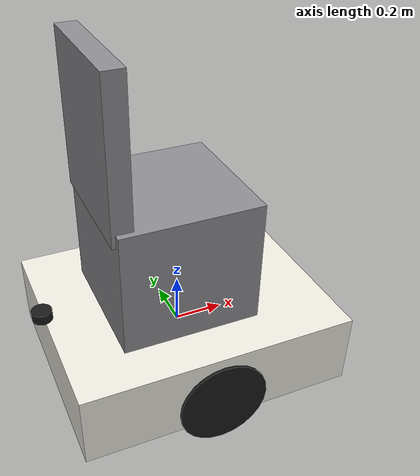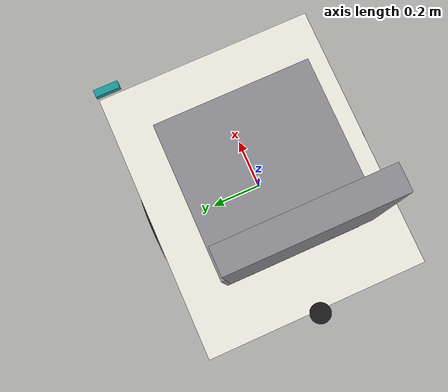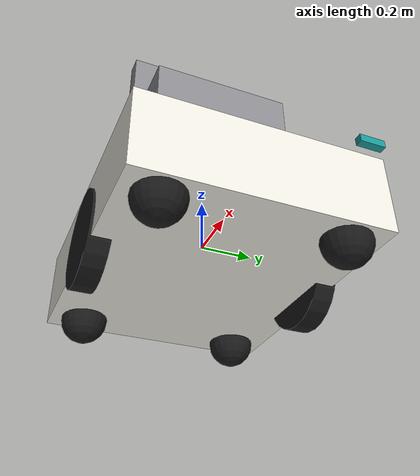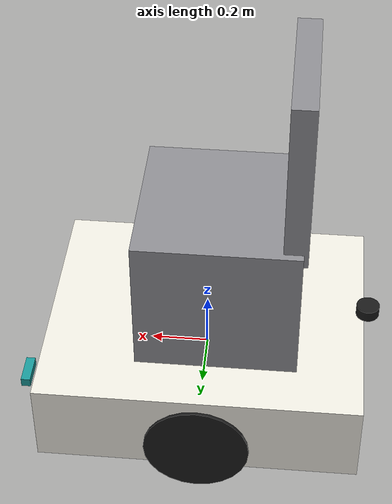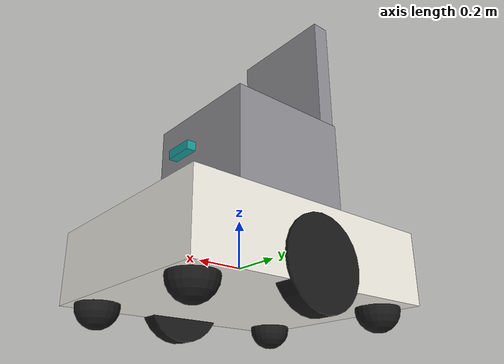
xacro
<?xml version="1.0"?>
<robot xmlns:xacro="http://www.ros.org/wiki/xacro" name="nanomob">
  <xacro:property name="L" value="1.10"/>
  <xacro:property name="W" value="0.90"/>
  <xacro:property name="H" value="0.30"/>
  <xacro:property name="wheel_r" value="0.18"/>
  <xacro:property name="wheel_w" value="0.08"/>
  <xacro:property name="wheel_y" value="0.42"/>
  <xacro:property name="wheel_z" value="-0.07"/>   <!-- base_link 원점은 지상 0.25 m -->
  <xacro:arg name="caster_r" default="0.09"/>
  <!-- 센서 장착 위치(E6 센서 배치 시험용 인자). z 는 base_link 기준(지상고 = z + 0.25), cam_pitch 는 아래로 + [rad] -->
  <xacro:arg name="cam_x" default="0.56"/><xacro:arg name="cam_y" default="0.40"/><xacro:arg name="cam_z" default="0.20"/><xacro:arg name="cam_pitch" default="0.0"/>
  <xacro:arg name="lidar_x" default="-0.56"/><xacro:arg name="lidar_y" default="0.0"/><xacro:arg name="lidar_z" default="0.20"/>   <!-- 캐스터 반지름: 턱 넘기 비교(E5c)용 인자 -->
  <xacro:property name="caster_r" value="$(arg caster_r)"/>
  <xacro:property name="caster_z" value="${caster_r - 0.25}"/>   <!-- 지면 접촉 유지: base_link 원점이 지상 0.25 m -->

  <xacro:macro name="box_inertia" params="m x y z">
    <inertia ixx="${m*(y*y+z*z)/12}" iyy="${m*(x*x+z*z)/12}" izz="${m*(x*x+y*y)/12}" ixy="0" ixz="0" iyz="0"/>
  </xacro:macro>

  <link name="base_link">
    <inertial><mass value="60"/><origin xyz="0 0 0"/><xacro:box_inertia m="60" x="${L}" y="${W}" z="${H}"/></inertial>
    <visual><geometry><box size="${L} ${W} ${H}"/></geometry><material name="ivory"><color rgba="0.93 0.92 0.88 1"/></material></visual>
    <collision><geometry><box size="${L} ${W} ${H}"/></geometry></collision>
  </link>

  <!-- 좌석 + 탑승자 (집중질량) -->
  <link name="seat_link">
    <inertial><mass value="70"/><origin xyz="0 0 0.3"/><xacro:box_inertia m="70" x="0.5" y="0.5" z="0.9"/></inertial>
    <visual><origin xyz="0 0 0.25"/><geometry><box size="0.55 0.55 0.5"/></geometry><material name="gray"><color rgba="0.55 0.55 0.57 1"/></material></visual>
    <visual><origin xyz="-0.25 0 0.75"/><geometry><box size="0.08 0.5 0.6"/></geometry><material name="gray"/></visual>
    <collision><origin xyz="0 0 0.25"/><geometry><box size="0.55 0.55 0.5"/></geometry></collision>
  </link>
  <joint name="seat_joint" type="fixed"><parent link="base_link"/><child link="seat_link"/><origin xyz="-0.05 0 ${H/2}"/></joint>

  <!-- 구동륜 -->
  <xacro:macro name="drive_wheel" params="name y">
    <link name="${name}_wheel">
      <inertial><mass value="3"/><inertia ixx="0.03" iyy="0.03" izz="0.05" ixy="0" ixz="0" iyz="0"/></inertial>
      <visual><origin rpy="${pi/2} 0 0"/><geometry><cylinder radius="${wheel_r}" length="${wheel_w}"/></geometry><material name="black"><color rgba="0.1 0.1 0.1 1"/></material></visual>
      <collision><origin rpy="${pi/2} 0 0"/><geometry><cylinder radius="${wheel_r}" length="${wheel_w}"/></geometry></collision>
    </link>
    <joint name="${name}_wheel_joint" type="continuous">
      <parent link="base_link"/><child link="${name}_wheel"/><origin xyz="0 ${y} ${wheel_z}"/><axis xyz="0 1 0"/>
    </joint>
    <gazebo reference="${name}_wheel"><mu1>1.0</mu1><mu2>1.0</mu2></gazebo>
  </xacro:macro>
  <xacro:drive_wheel name="left" y="${wheel_y}"/>
  <xacro:drive_wheel name="right" y="${-wheel_y}"/>

  <!-- 캐스터 (마찰 0 구체) -->
  <xacro:macro name="caster" params="name x y">
    <link name="${name}_caster">
      <inertial><mass value="0.8"/><inertia ixx="0.003" iyy="0.003" izz="0.003" ixy="0" ixz="0" iyz="0"/></inertial>
      <visual><geometry><sphere radius="${caster_r}"/></geometry><material name="black"/></visual>
      <collision><geometry><sphere radius="${caster_r}"/></geometry></collision>
    </link>
    <joint name="${name}_caster_joint" type="fixed"><parent link="base_link"/><child link="${name}_caster"/><origin xyz="${x} ${y} ${caster_z}"/></joint>
    <gazebo reference="${name}_caster"><mu1>0.0</mu1><mu2>0.0</mu2></gazebo>
  </xacro:macro>
  <xacro:caster name="fl" x="0.45" y="0.32"/>
  <xacro:caster name="fr" x="0.45" y="-0.32"/>
  <xacro:caster name="rl" x="-0.45" y="0.32"/>
  <xacro:caster name="rr" x="-0.45" y="-0.32"/>

  <!-- 전방 Depth 카메라 (차체 고정, 전방 좌측 코너, 지상 0.45 m) -->
  <link name="depth_camera_link">
    <inertial><mass value="0.1"/><inertia ixx="1e-4" iyy="1e-4" izz="1e-4" ixy="0" ixz="0" iyz="0"/></inertial>
    <visual><geometry><box size="0.03 0.10 0.03"/></geometry><material name="teal"><color rgba="0.1 0.6 0.6 1"/></material></visual>
  </link>
  <joint name="depth_camera_joint" type="fixed"><parent link="base_link"/><child link="depth_camera_link"/><origin xyz="$(arg cam_x) $(arg cam_y) $(arg cam_z)" rpy="0 $(arg cam_pitch) 0"/></joint>

  <!-- 후방 라이다 (고정 후면 섀시) -->
  <link name="rear_lidar_link">
    <inertial><mass value="0.2"/><inertia ixx="1e-4" iyy="1e-4" izz="1e-4" ixy="0" ixz="0" iyz="0"/></inertial>
    <visual><geometry><cylinder radius="0.04" length="0.04"/></geometry><material name="black"/></visual>
  </link>
  <joint name="rear_lidar_joint" type="fixed"><parent link="base_link"/><child link="rear_lidar_link"/><origin xyz="$(arg lidar_x) $(arg lidar_y) $(arg lidar_z)" rpy="0 0 ${pi}"/></joint>

  <gazebo reference="depth_camera_link">
    <sensor name="depth_camera" type="depth_camera">
      <update_rate>15</update_rate>
      <topic>depth</topic>
      <gz_frame_id>depth_camera_link</gz_frame_id>
      <camera>
        <horizontal_fov>1.518</horizontal_fov>   <!-- 87°, RealSense D435급 -->
        <image><width>160</width><height>120</height><format>R_FLOAT32</format></image>
        <clip><near>0.3</near><far>6.0</far></clip>
        <noise><type>gaussian</type><mean>0</mean><stddev>0.01</stddev></noise>
      </camera>
      <always_on>1</always_on><visualize>true</visualize>
    </sensor>
  </gazebo>
  <!-- IMU (차체 중심): C3 경사 감지, 턱 충격 측정 -->
  <gazebo reference="base_link">
    <sensor name="imu" type="imu">
      <update_rate>100</update_rate>
      <topic>imu</topic>
      <always_on>1</always_on>
    </sensor>
  </gazebo>
  <gazebo reference="rear_lidar_link">
    <sensor name="rear_lidar" type="gpu_lidar">
      <update_rate>10</update_rate>
      <topic>scan_rear</topic>
      <gz_frame_id>rear_lidar_link</gz_frame_id>
      <lidar>
        <scan><horizontal><samples>181</samples><resolution>1</resolution><min_angle>-1.5708</min_angle><max_angle>1.5708</max_angle></horizontal></scan>
        <range><min>0.1</min><max>12.0</max><resolution>0.01</resolution></range>
        <noise><type>gaussian</type><mean>0</mean><stddev>0.01</stddev></noise>
      </lidar>
      <always_on>1</always_on><visualize>false</visualize>
    </sensor>
  </gazebo>

  <gazebo>
    <plugin filename="gz-sim-diff-drive-system" name="gz::sim::systems::DiffDrive">
      <left_joint>left_wheel_joint</left_joint>
      <right_joint>right_wheel_joint</right_joint>
      <wheel_separation>${2*wheel_y}</wheel_separation>
      <wheel_radius>${wheel_r}</wheel_radius>
      <topic>cmd_vel</topic>
      <odom_topic>odom</odom_topic>
      <tf_topic>tf_gz</tf_topic>
      <frame_id>odom</frame_id>
      <child_frame_id>base_link</child_frame_id>
      <odom_publish_frequency>50</odom_publish_frequency>
      <max_linear_velocity>2.0</max_linear_velocity>
      <min_linear_velocity>-0.5</min_linear_velocity>
      <max_angular_velocity>1.5</max_angular_velocity>
    </plugin>
    <plugin filename="gz-sim-joint-state-publisher-system" name="gz::sim::systems::JointStatePublisher"><topic>joint_states</topic></plugin>
  </gazebo>
</robot>
